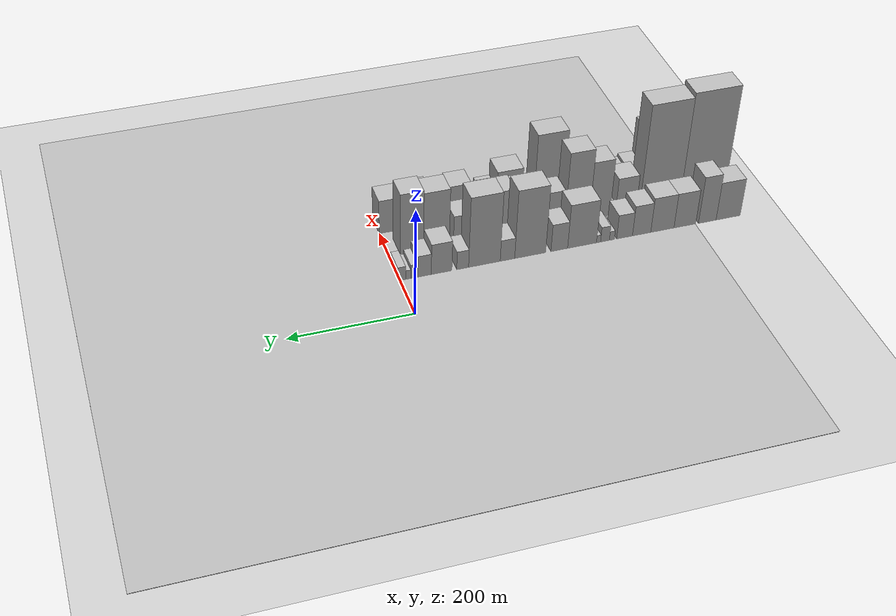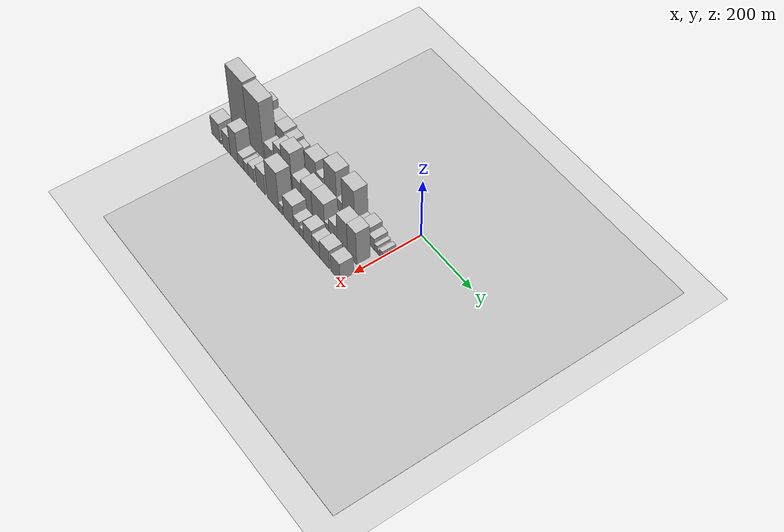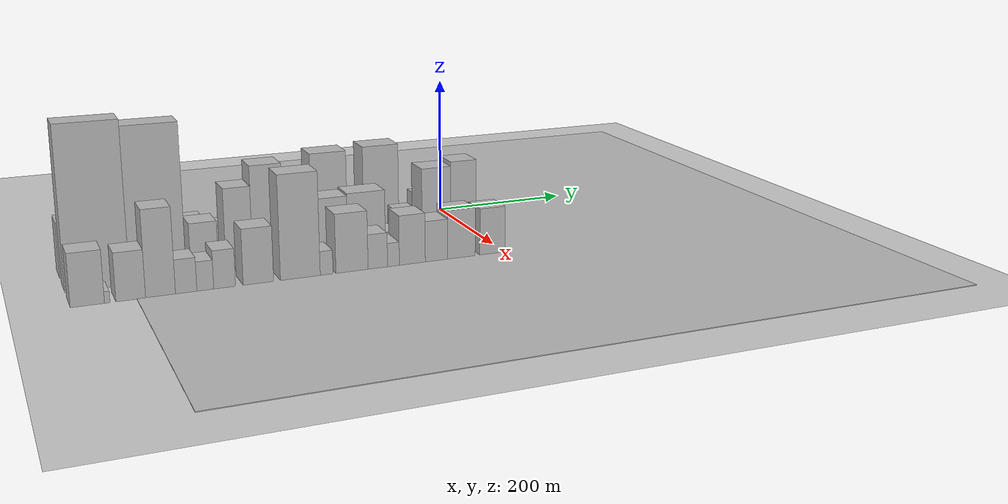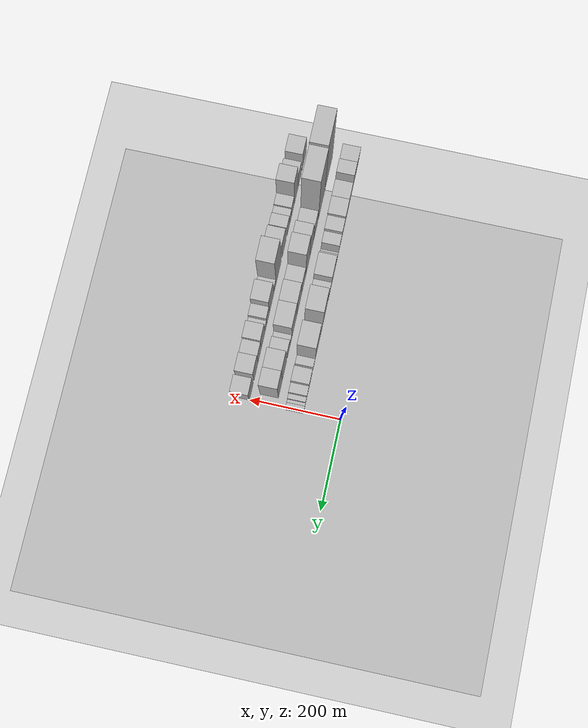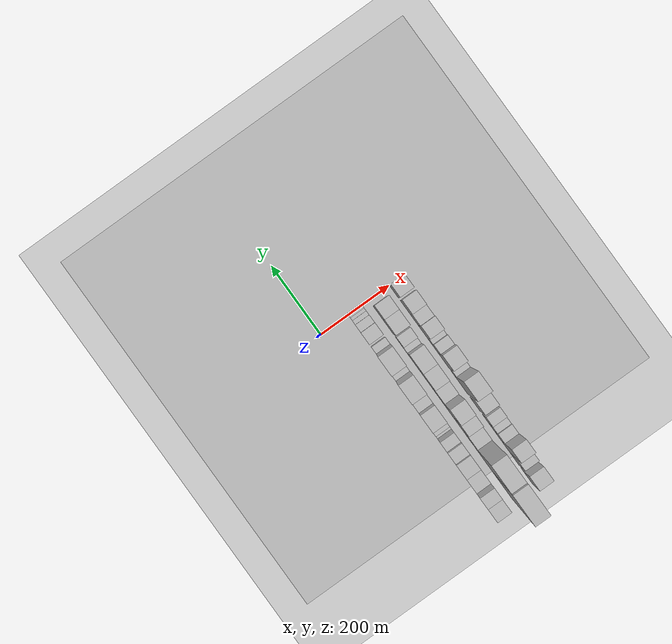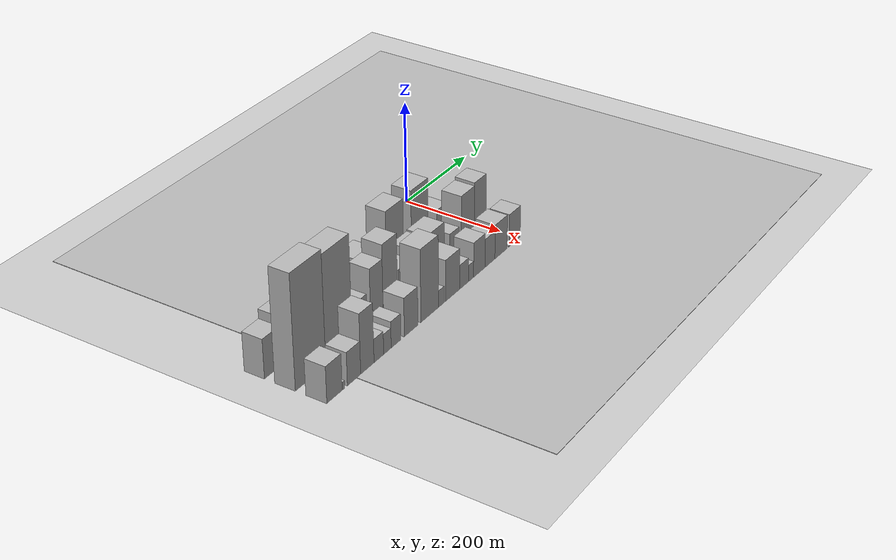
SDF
<sdf version="1.6">
 <world name="default">
  <include><name>ground_plane_1</name><uri>model://HANNAS_ground_plane</uri></include>
  <include>
   <name>ground_plane_2</name>
   <uri>model://HANNAS_ground_plane</uri>
   <pose>100 0 0  0 0 0</pose>
  </include>
  <model name="building_1">
   <static>1</static>
   <pose>100.0000 -558.4412 0 0.000000 0.000000 0.000000</pose>
   <link name="link">
    <pose>0 0 37.50 0 0 0</pose>
    <collision name="collision"><geometry><box><size>40.0000 43.1176 75.0000</size></box></geometry></collision>
    <visual name="visual">
     <cast_shadows>0</cast_shadows>
     <geometry><box><size>40.0000 43.1176 75.0000</size></box></geometry>
     <material>
      <script>
       <uri>model://HANNAS_wall/materials/scripts</uri>
       <uri>model://HANNAS_wall/materials/textures</uri>
       <name>vrc/HANNAS_wall</name>
      </script>
     </material>
    </visual>
   </link>
  </model>
  <model name="building_2">
   <static>1</static>
   <pose>100.0000 -521.2993 0 0.000000 0.000000 0.000000</pose>
   <link name="link">
    <pose>0 0 46.50 0 0 0</pose>
    <collision name="collision"><geometry><box><size>40.0000 31.1662 93.0000</size></box></geometry></collision>
    <visual name="visual">
     <cast_shadows>0</cast_shadows>
     <geometry><box><size>40.0000 31.1662 93.0000</size></box></geometry>
     <material>
      <script>
       <uri>model://HANNAS_wall/materials/scripts</uri>
       <uri>model://HANNAS_wall/materials/textures</uri>
       <name>vrc/HANNAS_wall</name>
      </script>
     </material>
    </visual>
   </link>
  </model>
  <model name="building_3">
   <static>1</static>
   <pose>100.0000 -481.5206 0 0.000000 0.000000 0.000000</pose>
   <link name="link">
    <pose>0 0 34.50 0 0 0</pose>
    <collision name="collision"><geometry><box><size>40.0000 38.3912 69.0000</size></box></geometry></collision>
    <visual name="visual">
     <cast_shadows>0</cast_shadows>
     <geometry><box><size>40.0000 38.3912 69.0000</size></box></geometry>
     <material>
      <script>
       <uri>model://HANNAS_wall/materials/scripts</uri>
       <uri>model://HANNAS_wall/materials/textures</uri>
       <name>vrc/HANNAS_wall</name>
      </script>
     </material>
    </visual>
   </link>
  </model>
  <model name="building_4">
   <static>1</static>
   <pose>100.0000 -441.9501 0 0.000000 0.000000 0.000000</pose>
   <link name="link">
    <pose>0 0 34.50 0 0 0</pose>
    <collision name="collision"><geometry><box><size>40.0000 40.7497 69.0000</size></box></geometry></collision>
    <visual name="visual">
     <cast_shadows>0</cast_shadows>
     <geometry><box><size>40.0000 40.7497 69.0000</size></box></geometry>
     <material>
      <script>
       <uri>model://HANNAS_wall/materials/scripts</uri>
       <uri>model://HANNAS_wall/materials/textures</uri>
       <name>vrc/HANNAS_wall</name>
      </script>
     </material>
    </visual>
   </link>
  </model>
  <model name="building_5">
   <static>1</static>
   <pose>100.0000 -405.6508 0 0.000000 0.000000 0.000000</pose>
   <link name="link">
    <pose>0 0 30.00 0 0 0</pose>
    <collision name="collision"><geometry><box><size>40.0000 31.8488 60.0000</size></box></geometry></collision>
    <visual name="visual">
     <cast_shadows>0</cast_shadows>
     <geometry><box><size>40.0000 31.8488 60.0000</size></box></geometry>
     <material>
      <script>
       <uri>model://HANNAS_wall/materials/scripts</uri>
       <uri>model://HANNAS_wall/materials/textures</uri>
       <name>vrc/HANNAS_wall</name>
      </script>
     </material>
    </visual>
   </link>
  </model>
  <model name="building_6">
   <static>1</static>
   <pose>100.0000 -376.0400 0 0.000000 0.000000 0.000000</pose>
   <link name="link">
    <pose>0 0 24.00 0 0 0</pose>
    <collision name="collision"><geometry><box><size>40.0000 27.3728 48.0000</size></box></geometry></collision>
    <visual name="visual">
     <cast_shadows>0</cast_shadows>
     <geometry><box><size>40.0000 27.3728 48.0000</size></box></geometry>
     <material>
      <script>
       <uri>model://HANNAS_wall/materials/scripts</uri>
       <uri>model://HANNAS_wall/materials/textures</uri>
       <name>vrc/HANNAS_wall</name>
      </script>
     </material>
    </visual>
   </link>
  </model>
  <model name="building_7">
   <static>1</static>
   <pose>100.0000 -354.0988 0 0.000000 0.000000 0.000000</pose>
   <link name="link">
    <pose>0 0 9.00 0 0 0</pose>
    <collision name="collision"><geometry><box><size>40.0000 8.5097 18.0000</size></box></geometry></collision>
    <visual name="visual">
     <cast_shadows>0</cast_shadows>
     <geometry><box><size>40.0000 8.5097 18.0000</size></box></geometry>
     <material>
      <script>
       <uri>model://HANNAS_wall/materials/scripts</uri>
       <uri>model://HANNAS_wall/materials/textures</uri>
       <name>vrc/HANNAS_wall</name>
      </script>
     </material>
    </visual>
   </link>
  </model>
  <model name="building_8">
   <static>1</static>
   <pose>100.0000 -342.2003 0 0.000000 0.000000 0.000000</pose>
   <link name="link">
    <pose>0 0 15.00 0 0 0</pose>
    <collision name="collision"><geometry><box><size>40.0000 15.2872 30.0000</size></box></geometry></collision>
    <visual name="visual">
     <cast_shadows>0</cast_shadows>
     <geometry><box><size>40.0000 15.2872 30.0000</size></box></geometry>
     <material>
      <script>
       <uri>model://HANNAS_wall/materials/scripts</uri>
       <uri>model://HANNAS_wall/materials/textures</uri>
       <name>vrc/HANNAS_wall</name>
      </script>
     </material>
    </visual>
   </link>
  </model>
  <model name="building_9">
   <static>1</static>
   <pose>100.0000 -331.0780 0 0.000000 0.000000 0.000000</pose>
   <link name="link">
    <pose>0 0 7.50 0 0 0</pose>
    <collision name="collision"><geometry><box><size>40.0000 6.9574 15.0000</size></box></geometry></collision>
    <visual name="visual">
     <cast_shadows>0</cast_shadows>
     <geometry><box><size>40.0000 6.9574 15.0000</size></box></geometry>
     <material>
      <script>
       <uri>model://HANNAS_wall/materials/scripts</uri>
       <uri>model://HANNAS_wall/materials/textures</uri>
       <name>vrc/HANNAS_wall</name>
      </script>
     </material>
    </visual>
   </link>
  </model>
  <model name="building_10">
   <static>1</static>
   <pose>100.0000 -302.8728 0 0.000000 0.000000 0.000000</pose>
   <link name="link">
    <pose>0 0 43.50 0 0 0</pose>
    <collision name="collision"><geometry><box><size>40.0000 49.4530 87.0000</size></box></geometry></collision>
    <visual name="visual">
     <cast_shadows>0</cast_shadows>
     <geometry><box><size>40.0000 49.4530 87.0000</size></box></geometry>
     <material>
      <script>
       <uri>model://HANNAS_wall/materials/scripts</uri>
       <uri>model://HANNAS_wall/materials/textures</uri>
       <name>vrc/HANNAS_wall</name>
      </script>
     </material>
    </visual>
   </link>
  </model>
  <model name="building_11">
   <static>1</static>
   <pose>100.0000 -263.9898 0 0.000000 0.000000 0.000000</pose>
   <link name="link">
    <pose>0 0 27.00 0 0 0</pose>
    <collision name="collision"><geometry><box><size>40.0000 28.3131 54.0000</size></box></geometry></collision>
    <visual name="visual">
     <cast_shadows>0</cast_shadows>
     <geometry><box><size>40.0000 28.3131 54.0000</size></box></geometry>
     <material>
      <script>
       <uri>model://HANNAS_wall/materials/scripts</uri>
       <uri>model://HANNAS_wall/materials/textures</uri>
       <name>vrc/HANNAS_wall</name>
      </script>
     </material>
    </visual>
   </link>
  </model>
  <model name="building_12">
   <static>1</static>
   <pose>100.0000 -214.7420 0 0.000000 0.000000 0.000000</pose>
   <link name="link">
    <pose>0 0 67.50 0 0 0</pose>
    <collision name="collision"><geometry><box><size>40.0000 52.1824 135.0000</size></box></geometry></collision>
    <visual name="visual">
     <cast_shadows>0</cast_shadows>
     <geometry><box><size>40.0000 52.1824 135.0000</size></box></geometry>
     <material>
      <script>
       <uri>model://HANNAS_wall/materials/scripts</uri>
       <uri>model://HANNAS_wall/materials/textures</uri>
       <name>vrc/HANNAS_wall</name>
      </script>
     </material>
    </visual>
   </link>
  </model>
  <model name="building_13">
   <static>1</static>
   <pose>100.0000 -176.5291 0 0.000000 0.000000 0.000000</pose>
   <link name="link">
    <pose>0 0 21.00 0 0 0</pose>
    <collision name="collision"><geometry><box><size>40.0000 24.2435 42.0000</size></box></geometry></collision>
    <visual name="visual">
     <cast_shadows>0</cast_shadows>
     <geometry><box><size>40.0000 24.2435 42.0000</size></box></geometry>
     <material>
      <script>
       <uri>model://HANNAS_wall/materials/scripts</uri>
       <uri>model://HANNAS_wall/materials/textures</uri>
       <name>vrc/HANNAS_wall</name>
      </script>
     </material>
    </visual>
   </link>
  </model>
  <model name="building_14">
   <static>1</static>
   <pose>100.0000 -138.0995 0 0.000000 0.000000 0.000000</pose>
   <link name="link">
    <pose>0 0 69.00 0 0 0</pose>
    <collision name="collision"><geometry><box><size>40.0000 52.6157 138.0000</size></box></geometry></collision>
    <visual name="visual">
     <cast_shadows>0</cast_shadows>
     <geometry><box><size>40.0000 52.6157 138.0000</size></box></geometry>
     <material>
      <script>
       <uri>model://HANNAS_wall/materials/scripts</uri>
       <uri>model://HANNAS_wall/materials/textures</uri>
       <name>vrc/HANNAS_wall</name>
      </script>
     </material>
    </visual>
   </link>
  </model>
  <model name="building_15">
   <static>1</static>
   <pose>100.0000 -102.0378 0 0.000000 0.000000 0.000000</pose>
   <link name="link">
    <pose>0 0 18.00 0 0 0</pose>
    <collision name="collision"><geometry><box><size>40.0000 19.5076 36.0000</size></box></geometry></collision>
    <visual name="visual">
     <cast_shadows>0</cast_shadows>
     <geometry><box><size>40.0000 19.5076 36.0000</size></box></geometry>
     <material>
      <script>
       <uri>model://HANNAS_wall/materials/scripts</uri>
       <uri>model://HANNAS_wall/materials/textures</uri>
       <name>vrc/HANNAS_wall</name>
      </script>
     </material>
    </visual>
   </link>
  </model>
  <model name="building_16">
   <static>1</static>
   <pose>100.0000 -67.3096 0 0.000000 0.000000 0.000000</pose>
   <link name="link">
    <pose>0 0 30.00 0 0 0</pose>
    <collision name="collision"><geometry><box><size>40.0000 33.9488 60.0000</size></box></geometry></collision>
    <visual name="visual">
     <cast_shadows>0</cast_shadows>
     <geometry><box><size>40.0000 33.9488 60.0000</size></box></geometry>
     <material>
      <script>
       <uri>model://HANNAS_wall/materials/scripts</uri>
       <uri>model://HANNAS_wall/materials/textures</uri>
       <name>vrc/HANNAS_wall</name>
      </script>
     </material>
    </visual>
   </link>
  </model>
  <model name="building_17">
   <static>1</static>
   <pose>100.0000 -39.3773 0 0.000000 0.000000 0.000000</pose>
   <link name="link">
    <pose>0 0 21.00 0 0 0</pose>
    <collision name="collision"><geometry><box><size>40.0000 21.9160 42.0000</size></box></geometry></collision>
    <visual name="visual">
     <cast_shadows>0</cast_shadows>
     <geometry><box><size>40.0000 21.9160 42.0000</size></box></geometry>
     <material>
      <script>
       <uri>model://HANNAS_wall/materials/scripts</uri>
       <uri>model://HANNAS_wall/materials/textures</uri>
       <name>vrc/HANNAS_wall</name>
      </script>
     </material>
    </visual>
   </link>
  </model>
  <model name="building_18">
   <static>1</static>
   <pose>100.0000 -22.6179 0 0.000000 0.000000 0.000000</pose>
   <link name="link">
    <pose>0 0 13.50 0 0 0</pose>
    <collision name="collision"><geometry><box><size>40.0000 11.6028 27.0000</size></box></geometry></collision>
    <visual name="visual">
     <cast_shadows>0</cast_shadows>
     <geometry><box><size>40.0000 11.6028 27.0000</size></box></geometry>
     <material>
      <script>
       <uri>model://HANNAS_wall/materials/scripts</uri>
       <uri>model://HANNAS_wall/materials/textures</uri>
       <name>vrc/HANNAS_wall</name>
      </script>
     </material>
    </visual>
   </link>
  </model>
  <model name="building_19">
   <static>1</static>
   <pose>100.0000 -12.7215 0 0.000000 0.000000 0.000000</pose>
   <link name="link">
    <pose>0 0 9.00 0 0 0</pose>
    <collision name="collision"><geometry><box><size>40.0000 8.1899 18.0000</size></box></geometry></collision>
    <visual name="visual">
     <cast_shadows>0</cast_shadows>
     <geometry><box><size>40.0000 8.1899 18.0000</size></box></geometry>
     <material>
      <script>
       <uri>model://HANNAS_wall/materials/scripts</uri>
       <uri>model://HANNAS_wall/materials/textures</uri>
       <name>vrc/HANNAS_wall</name>
      </script>
     </material>
    </visual>
   </link>
  </model>
  <model name="building_20">
   <static>1</static>
   <pose>100.0000 -2.1696 0 0.000000 0.000000 0.000000</pose>
   <link name="link">
    <pose>0 0 13.50 0 0 0</pose>
    <collision name="collision"><geometry><box><size>40.0000 12.9139 27.0000</size></box></geometry></collision>
    <visual name="visual">
     <cast_shadows>0</cast_shadows>
     <geometry><box><size>40.0000 12.9139 27.0000</size></box></geometry>
     <material>
      <script>
       <uri>model://HANNAS_wall/materials/scripts</uri>
       <uri>model://HANNAS_wall/materials/textures</uri>
       <name>vrc/HANNAS_wall</name>
      </script>
     </material>
    </visual>
   </link>
  </model>
  <model name="building_37">
   <static>1</static>
   <pose>160.0000 -539.8047 0 0.000000 0.000000 0.000000</pose>
   <link name="link">
    <pose>0 0 108.00 0 0 0</pose>
    <collision name="collision"><geometry><box><size>40.0000 80.3907 216.0000</size></box></geometry></collision>
    <visual name="visual">
     <cast_shadows>0</cast_shadows>
     <geometry><box><size>40.0000 80.3907 216.0000</size></box></geometry>
     <material>
      <script>
       <uri>model://HANNAS_wall/materials/scripts</uri>
       <uri>model://HANNAS_wall/materials/textures</uri>
       <name>vrc/HANNAS_wall</name>
      </script>
     </material>
    </visual>
   </link>
  </model>
  <model name="building_38">
   <static>1</static>
   <pose>160.0000 -463.3881 0 0.000000 0.000000 0.000000</pose>
   <link name="link">
    <pose>0 0 103.50 0 0 0</pose>
    <collision name="collision"><geometry><box><size>40.0000 72.4423 207.0000</size></box></geometry></collision>
    <visual name="visual">
     <cast_shadows>0</cast_shadows>
     <geometry><box><size>40.0000 72.4423 207.0000</size></box></geometry>
     <material>
      <script>
       <uri>model://HANNAS_wall/materials/scripts</uri>
       <uri>model://HANNAS_wall/materials/textures</uri>
       <name>vrc/HANNAS_wall</name>
      </script>
     </material>
    </visual>
   </link>
  </model>
  <model name="building_39">
   <static>1</static>
   <pose>160.0000 -402.9749 0 0.000000 0.000000 0.000000</pose>
   <link name="link">
    <pose>0 0 36.00 0 0 0</pose>
    <collision name="collision"><geometry><box><size>40.0000 36.3841 72.0000</size></box></geometry></collision>
    <visual name="visual">
     <cast_shadows>0</cast_shadows>
     <geometry><box><size>40.0000 36.3841 72.0000</size></box></geometry>
     <material>
      <script>
       <uri>model://HANNAS_wall/materials/scripts</uri>
       <uri>model://HANNAS_wall/materials/textures</uri>
       <name>vrc/HANNAS_wall</name>
      </script>
     </material>
    </visual>
   </link>
  </model>
  <model name="building_40">
   <static>1</static>
   <pose>160.0000 -379.8645 0 0.000000 0.000000 0.000000</pose>
   <link name="link">
    <pose>0 0 10.50 0 0 0</pose>
    <collision name="collision"><geometry><box><size>40.0000 9.8367 21.0000</size></box></geometry></collision>
    <visual name="visual">
     <cast_shadows>0</cast_shadows>
     <geometry><box><size>40.0000 9.8367 21.0000</size></box></geometry>
     <material>
      <script>
       <uri>model://HANNAS_wall/materials/scripts</uri>
       <uri>model://HANNAS_wall/materials/textures</uri>
       <name>vrc/HANNAS_wall</name>
      </script>
     </material>
    </visual>
   </link>
  </model>
  <model name="building_41">
   <static>1</static>
   <pose>160.0000 -356.9535 0 0.000000 0.000000 0.000000</pose>
   <link name="link">
    <pose>0 0 57.00 0 0 0</pose>
    <collision name="collision"><geometry><box><size>40.0000 35.9852 114.0000</size></box></geometry></collision>
    <visual name="visual">
     <cast_shadows>0</cast_shadows>
     <geometry><box><size>40.0000 35.9852 114.0000</size></box></geometry>
     <material>
      <script>
       <uri>model://HANNAS_wall/materials/scripts</uri>
       <uri>model://HANNAS_wall/materials/textures</uri>
       <name>vrc/HANNAS_wall</name>
      </script>
     </material>
    </visual>
   </link>
  </model>
  <model name="building_42">
   <static>1</static>
   <pose>160.0000 -317.7506 0 0.000000 0.000000 0.000000</pose>
   <link name="link">
    <pose>0 0 70.50 0 0 0</pose>
    <collision name="collision"><geometry><box><size>40.0000 42.4207 141.0000</size></box></geometry></collision>
    <visual name="visual">
     <cast_shadows>0</cast_shadows>
     <geometry><box><size>40.0000 42.4207 141.0000</size></box></geometry>
     <material>
      <script>
       <uri>model://HANNAS_wall/materials/scripts</uri>
       <uri>model://HANNAS_wall/materials/textures</uri>
       <name>vrc/HANNAS_wall</name>
      </script>
     </material>
    </visual>
   </link>
  </model>
  <model name="building_43">
   <static>1</static>
   <pose>160.0000 -273.8139 0 0.000000 0.000000 0.000000</pose>
   <link name="link">
    <pose>0 0 34.50 0 0 0</pose>
    <collision name="collision"><geometry><box><size>40.0000 39.4525 69.0000</size></box></geometry></collision>
    <visual name="visual">
     <cast_shadows>0</cast_shadows>
     <geometry><box><size>40.0000 39.4525 69.0000</size></box></geometry>
     <material>
      <script>
       <uri>model://HANNAS_wall/materials/scripts</uri>
       <uri>model://HANNAS_wall/materials/textures</uri>
       <name>vrc/HANNAS_wall</name>
      </script>
     </material>
    </visual>
   </link>
  </model>
  <model name="building_44">
   <static>1</static>
   <pose>160.0000 -230.6634 0 0.000000 0.000000 0.000000</pose>
   <link name="link">
    <pose>0 0 43.50 0 0 0</pose>
    <collision name="collision"><geometry><box><size>40.0000 46.8486 87.0000</size></box></geometry></collision>
    <visual name="visual">
     <cast_shadows>0</cast_shadows>
     <geometry><box><size>40.0000 46.8486 87.0000</size></box></geometry>
     <material>
      <script>
       <uri>model://HANNAS_wall/materials/scripts</uri>
       <uri>model://HANNAS_wall/materials/textures</uri>
       <name>vrc/HANNAS_wall</name>
      </script>
     </material>
    </visual>
   </link>
  </model>
  <model name="building_45">
   <static>1</static>
   <pose>160.0000 -180.2933 0 0.000000 0.000000 0.000000</pose>
   <link name="link">
    <pose>0 0 45.00 0 0 0</pose>
    <collision name="collision"><geometry><box><size>40.0000 53.8916 90.0000</size></box></geometry></collision>
    <visual name="visual">
     <cast_shadows>0</cast_shadows>
     <geometry><box><size>40.0000 53.8916 90.0000</size></box></geometry>
     <material>
      <script>
       <uri>model://HANNAS_wall/materials/scripts</uri>
       <uri>model://HANNAS_wall/materials/textures</uri>
       <name>vrc/HANNAS_wall</name>
      </script>
     </material>
    </visual>
   </link>
  </model>
  <model name="building_46">
   <static>1</static>
   <pose>160.0000 -144.5424 0 0.000000 0.000000 0.000000</pose>
   <link name="link">
    <pose>0 0 15.00 0 0 0</pose>
    <collision name="collision"><geometry><box><size>40.0000 17.6103 30.0000</size></box></geometry></collision>
    <visual name="visual">
     <cast_shadows>0</cast_shadows>
     <geometry><box><size>40.0000 17.6103 30.0000</size></box></geometry>
     <material>
      <script>
       <uri>model://HANNAS_wall/materials/scripts</uri>
       <uri>model://HANNAS_wall/materials/textures</uri>
       <name>vrc/HANNAS_wall</name>
      </script>
     </material>
    </visual>
   </link>
  </model>
  <model name="building_47">
   <static>1</static>
   <pose>160.0000 -120.9377 0 0.000000 0.000000 0.000000</pose>
   <link name="link">
    <pose>0 0 28.50 0 0 0</pose>
    <collision name="collision"><geometry><box><size>40.0000 29.5990 57.0000</size></box></geometry></collision>
    <visual name="visual">
     <cast_shadows>0</cast_shadows>
     <geometry><box><size>40.0000 29.5990 57.0000</size></box></geometry>
     <material>
      <script>
       <uri>model://HANNAS_wall/materials/scripts</uri>
       <uri>model://HANNAS_wall/materials/textures</uri>
       <name>vrc/HANNAS_wall</name>
      </script>
     </material>
    </visual>
   </link>
  </model>
  <model name="building_48">
   <static>1</static>
   <pose>160.0000 -77.5481 0 0.000000 0.000000 0.000000</pose>
   <link name="link">
    <pose>0 0 57.00 0 0 0</pose>
    <collision name="collision"><geometry><box><size>40.0000 43.1801 114.0000</size></box></geometry></collision>
    <visual name="visual">
     <cast_shadows>0</cast_shadows>
     <geometry><box><size>40.0000 43.1801 114.0000</size></box></geometry>
     <material>
      <script>
       <uri>model://HANNAS_wall/materials/scripts</uri>
       <uri>model://HANNAS_wall/materials/textures</uri>
       <name>vrc/HANNAS_wall</name>
      </script>
     </material>
    </visual>
   </link>
  </model>
  <model name="building_49">
   <static>1</static>
   <pose>160.0000 -36.6136 0 0.000000 0.000000 0.000000</pose>
   <link name="link">
    <pose>0 0 60.00 0 0 0</pose>
    <collision name="collision"><geometry><box><size>40.0000 38.6889 120.0000</size></box></geometry></collision>
    <visual name="visual">
     <cast_shadows>0</cast_shadows>
     <geometry><box><size>40.0000 38.6889 120.0000</size></box></geometry>
     <material>
      <script>
       <uri>model://HANNAS_wall/materials/scripts</uri>
       <uri>model://HANNAS_wall/materials/textures</uri>
       <name>vrc/HANNAS_wall</name>
      </script>
     </material>
    </visual>
   </link>
  </model>
  <model name="building_69">
   <static>1</static>
   <pose>220.0000 -559.6485 0 0.000000 0.000000 0.000000</pose>
   <link name="link">
    <pose>0 0 34.50 0 0 0</pose>
    <collision name="collision"><geometry><box><size>40.0000 40.7031 69.0000</size></box></geometry></collision>
    <visual name="visual">
     <cast_shadows>0</cast_shadows>
     <geometry><box><size>40.0000 40.7031 69.0000</size></box></geometry>
     <material>
      <script>
       <uri>model://HANNAS_wall/materials/scripts</uri>
       <uri>model://HANNAS_wall/materials/textures</uri>
       <name>vrc/HANNAS_wall</name>
      </script>
     </material>
    </visual>
   </link>
  </model>
  <model name="building_70">
   <static>1</static>
   <pose>220.0000 -535.9450 0 0.000000 0.000000 0.000000</pose>
   <link name="link">
    <pose>0 0 7.50 0 0 0</pose>
    <collision name="collision"><geometry><box><size>40.0000 6.7039 15.0000</size></box></geometry></collision>
    <visual name="visual">
     <cast_shadows>0</cast_shadows>
     <geometry><box><size>40.0000 6.7039 15.0000</size></box></geometry>
     <material>
      <script>
       <uri>model://HANNAS_wall/materials/scripts</uri>
       <uri>model://HANNAS_wall/materials/textures</uri>
       <name>vrc/HANNAS_wall</name>
      </script>
     </material>
    </visual>
   </link>
  </model>
  <model name="building_71">
   <static>1</static>
   <pose>220.0000 -507.5603 0 0.000000 0.000000 0.000000</pose>
   <link name="link">
    <pose>0 0 31.50 0 0 0</pose>
    <collision name="collision"><geometry><box><size>40.0000 36.0655 63.0000</size></box></geometry></collision>
    <visual name="visual">
     <cast_shadows>0</cast_shadows>
     <geometry><box><size>40.0000 36.0655 63.0000</size></box></geometry>
     <material>
      <script>
       <uri>model://HANNAS_wall/materials/scripts</uri>
       <uri>model://HANNAS_wall/materials/textures</uri>
       <name>vrc/HANNAS_wall</name>
      </script>
     </material>
    </visual>
   </link>
  </model>
  <model name="building_72">
   <static>1</static>
   <pose>220.0000 -471.0704 0 0.000000 0.000000 0.000000</pose>
   <link name="link">
    <pose>0 0 57.00 0 0 0</pose>
    <collision name="collision"><geometry><box><size>40.0000 36.9142 114.0000</size></box></geometry></collision>
    <visual name="visual">
     <cast_shadows>0</cast_shadows>
     <geometry><box><size>40.0000 36.9142 114.0000</size></box></geometry>
     <material>
      <script>
       <uri>model://HANNAS_wall/materials/scripts</uri>
       <uri>model://HANNAS_wall/materials/textures</uri>
       <name>vrc/HANNAS_wall</name>
      </script>
     </material>
    </visual>
   </link>
  </model>
  <model name="building_73">
   <static>1</static>
   <pose>220.0000 -439.1757 0 0.000000 0.000000 0.000000</pose>
   <link name="link">
    <pose>0 0 22.50 0 0 0</pose>
    <collision name="collision"><geometry><box><size>40.0000 26.8754 45.0000</size></box></geometry></collision>
    <visual name="visual">
     <cast_shadows>0</cast_shadows>
     <geometry><box><size>40.0000 26.8754 45.0000</size></box></geometry>
     <material>
      <script>
       <uri>model://HANNAS_wall/materials/scripts</uri>
       <uri>model://HANNAS_wall/materials/textures</uri>
       <name>vrc/HANNAS_wall</name>
      </script>
     </material>
    </visual>
   </link>
  </model>
  <model name="building_74">
   <static>1</static>
   <pose>220.0000 -415.0763 0 0.000000 0.000000 0.000000</pose>
   <link name="link">
    <pose>0 0 19.50 0 0 0</pose>
    <collision name="collision"><geometry><box><size>40.0000 21.3235 39.0000</size></box></geometry></collision>
    <visual name="visual">
     <cast_shadows>0</cast_shadows>
     <geometry><box><size>40.0000 21.3235 39.0000</size></box></geometry>
     <material>
      <script>
       <uri>model://HANNAS_wall/materials/scripts</uri>
       <uri>model://HANNAS_wall/materials/textures</uri>
       <name>vrc/HANNAS_wall</name>
      </script>
     </material>
    </visual>
   </link>
  </model>
  <model name="building_75">
   <static>1</static>
   <pose>220.0000 -390.4977 0 0.000000 0.000000 0.000000</pose>
   <link name="link">
    <pose>0 0 25.50 0 0 0</pose>
    <collision name="collision"><geometry><box><size>40.0000 27.8337 51.0000</size></box></geometry></collision>
    <visual name="visual">
     <cast_shadows>0</cast_shadows>
     <geometry><box><size>40.0000 27.8337 51.0000</size></box></geometry>
     <material>
      <script>
       <uri>model://HANNAS_wall/materials/scripts</uri>
       <uri>model://HANNAS_wall/materials/textures</uri>
       <name>vrc/HANNAS_wall</name>
      </script>
     </material>
    </visual>
   </link>
  </model>
  <model name="building_76">
   <static>1</static>
   <pose>220.0000 -346.6879 0 0.000000 0.000000 0.000000</pose>
   <link name="link">
    <pose>0 0 37.50 0 0 0</pose>
    <collision name="collision"><geometry><box><size>40.0000 39.7858 75.0000</size></box></geometry></collision>
    <visual name="visual">
     <cast_shadows>0</cast_shadows>
     <geometry><box><size>40.0000 39.7858 75.0000</size></box></geometry>
     <material>
      <script>
       <uri>model://HANNAS_wall/materials/scripts</uri>
       <uri>model://HANNAS_wall/materials/textures</uri>
       <name>vrc/HANNAS_wall</name>
      </script>
     </material>
    </visual>
   </link>
  </model>
  <model name="building_77">
   <static>1</static>
   <pose>220.0000 -291.1624 0 0.000000 0.000000 0.000000</pose>
   <link name="link">
    <pose>0 0 70.50 0 0 0</pose>
    <collision name="collision"><geometry><box><size>40.0000 53.2652 141.0000</size></box></geometry></collision>
    <visual name="visual">
     <cast_shadows>0</cast_shadows>
     <geometry><box><size>40.0000 53.2652 141.0000</size></box></geometry>
     <material>
      <script>
       <uri>model://HANNAS_wall/materials/scripts</uri>
       <uri>model://HANNAS_wall/materials/textures</uri>
       <name>vrc/HANNAS_wall</name>
      </script>
     </material>
    </visual>
   </link>
  </model>
  <model name="building_78">
   <static>1</static>
   <pose>220.0000 -255.8481 0 0.000000 0.000000 0.000000</pose>
   <link name="link">
    <pose>0 0 16.50 0 0 0</pose>
    <collision name="collision"><geometry><box><size>40.0000 17.3635 33.0000</size></box></geometry></collision>
    <visual name="visual">
     <cast_shadows>0</cast_shadows>
     <geometry><box><size>40.0000 17.3635 33.0000</size></box></geometry>
     <material>
      <script>
       <uri>model://HANNAS_wall/materials/scripts</uri>
       <uri>model://HANNAS_wall/materials/textures</uri>
       <name>vrc/HANNAS_wall</name>
      </script>
     </material>
    </visual>
   </link>
  </model>
  <model name="building_79">
   <static>1</static>
   <pose>220.0000 -220.9776 0 0.000000 0.000000 0.000000</pose>
   <link name="link">
    <pose>0 0 40.50 0 0 0</pose>
    <collision name="collision"><geometry><box><size>40.0000 44.3773 81.0000</size></box></geometry></collision>
    <visual name="visual">
     <cast_shadows>0</cast_shadows>
     <geometry><box><size>40.0000 44.3773 81.0000</size></box></geometry>
     <material>
      <script>
       <uri>model://HANNAS_wall/materials/scripts</uri>
       <uri>model://HANNAS_wall/materials/textures</uri>
       <name>vrc/HANNAS_wall</name>
      </script>
     </material>
    </visual>
   </link>
  </model>
  <model name="building_80">
   <static>1</static>
   <pose>220.0000 -185.1038 0 0.000000 0.000000 0.000000</pose>
   <link name="link">
    <pose>0 0 24.00 0 0 0</pose>
    <collision name="collision"><geometry><box><size>40.0000 27.3704 48.0000</size></box></geometry></collision>
    <visual name="visual">
     <cast_shadows>0</cast_shadows>
     <geometry><box><size>40.0000 27.3704 48.0000</size></box></geometry>
     <material>
      <script>
       <uri>model://HANNAS_wall/materials/scripts</uri>
       <uri>model://HANNAS_wall/materials/textures</uri>
       <name>vrc/HANNAS_wall</name>
      </script>
     </material>
    </visual>
   </link>
  </model>
  <model name="building_81">
   <static>1</static>
   <pose>220.0000 -163.0716 0 0.000000 0.000000 0.000000</pose>
   <link name="link">
    <pose>0 0 16.50 0 0 0</pose>
    <collision name="collision"><geometry><box><size>40.0000 16.6939 33.0000</size></box></geometry></collision>
    <visual name="visual">
     <cast_shadows>0</cast_shadows>
     <geometry><box><size>40.0000 16.6939 33.0000</size></box></geometry>
     <material>
      <script>
       <uri>model://HANNAS_wall/materials/scripts</uri>
       <uri>model://HANNAS_wall/materials/textures</uri>
       <name>vrc/HANNAS_wall</name>
      </script>
     </material>
    </visual>
   </link>
  </model>
  <model name="building_82">
   <static>1</static>
   <pose>220.0000 -136.1358 0 0.000000 0.000000 0.000000</pose>
   <link name="link">
    <pose>0 0 34.50 0 0 0</pose>
    <collision name="collision"><geometry><box><size>40.0000 37.1777 69.0000</size></box></geometry></collision>
    <visual name="visual">
     <cast_shadows>0</cast_shadows>
     <geometry><box><size>40.0000 37.1777 69.0000</size></box></geometry>
     <material>
      <script>
       <uri>model://HANNAS_wall/materials/scripts</uri>
       <uri>model://HANNAS_wall/materials/textures</uri>
       <name>vrc/HANNAS_wall</name>
      </script>
     </material>
    </visual>
   </link>
  </model>
  <model name="building_83">
   <static>1</static>
   <pose>220.0000 -101.3084 0 0.000000 0.000000 0.000000</pose>
   <link name="link">
    <pose>0 0 28.50 0 0 0</pose>
    <collision name="collision"><geometry><box><size>40.0000 32.4771 57.0000</size></box></geometry></collision>
    <visual name="visual">
     <cast_shadows>0</cast_shadows>
     <geometry><box><size>40.0000 32.4771 57.0000</size></box></geometry>
     <material>
      <script>
       <uri>model://HANNAS_wall/materials/scripts</uri>
       <uri>model://HANNAS_wall/materials/textures</uri>
       <name>vrc/HANNAS_wall</name>
      </script>
     </material>
    </visual>
   </link>
  </model>
  <model name="building_84">
   <static>1</static>
   <pose>220.0000 -64.7450 0 0.000000 0.000000 0.000000</pose>
   <link name="link">
    <pose>0 0 34.50 0 0 0</pose>
    <collision name="collision"><geometry><box><size>40.0000 40.6498 69.0000</size></box></geometry></collision>
    <visual name="visual">
     <cast_shadows>0</cast_shadows>
     <geometry><box><size>40.0000 40.6498 69.0000</size></box></geometry>
     <material>
      <script>
       <uri>model://HANNAS_wall/materials/scripts</uri>
       <uri>model://HANNAS_wall/materials/textures</uri>
       <name>vrc/HANNAS_wall</name>
      </script>
     </material>
    </visual>
   </link>
  </model>
  <model name="building_85">
   <static>1</static>
   <pose>220.0000 -18.4267 0 0.000000 0.000000 0.000000</pose>
   <link name="link">
    <pose>0 0 33.00 0 0 0</pose>
    <collision name="collision"><geometry><box><size>40.0000 37.9868 66.0000</size></box></geometry></collision>
    <visual name="visual">
     <cast_shadows>0</cast_shadows>
     <geometry><box><size>40.0000 37.9868 66.0000</size></box></geometry>
     <material>
      <script>
       <uri>model://HANNAS_wall/materials/scripts</uri>
       <uri>model://HANNAS_wall/materials/textures</uri>
       <name>vrc/HANNAS_wall</name>
      </script>
     </material>
    </visual>
   </link>
  </model>
 </world>
</sdf>
